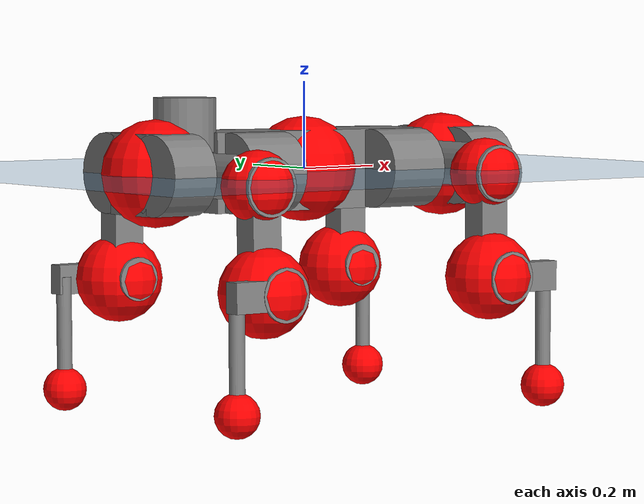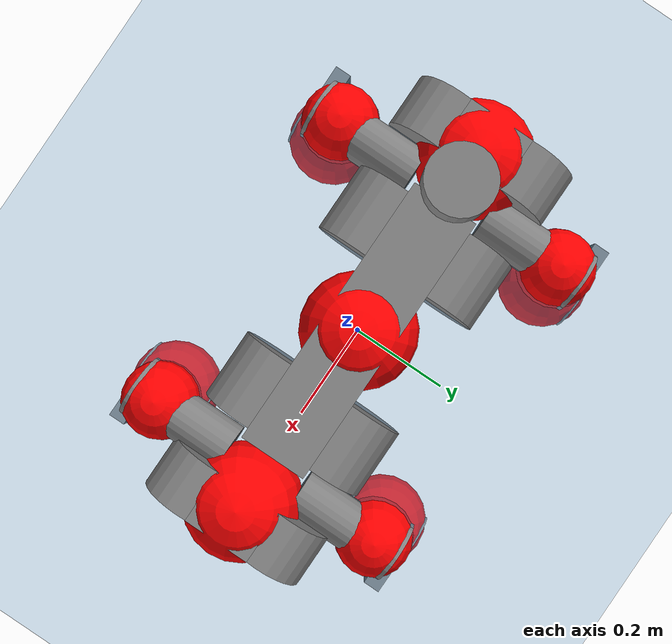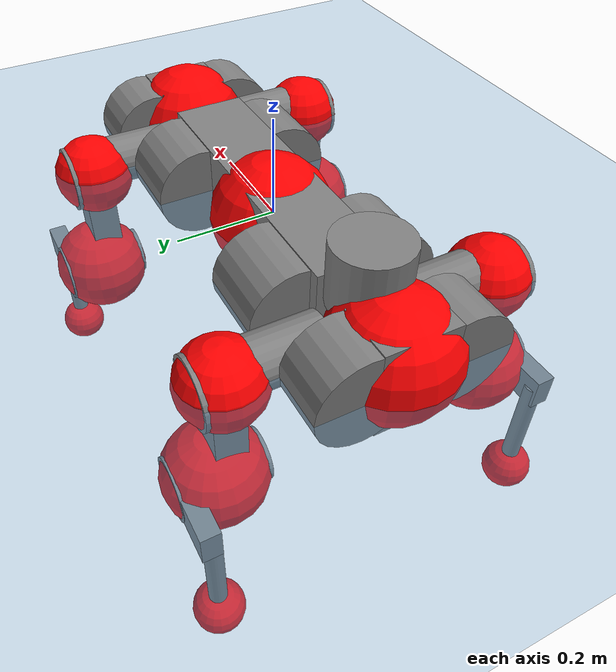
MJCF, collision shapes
<mujoco model="anymal_c">
  <compiler angle="radian" assetdir="assets" balanceinertia="true" inertiafromgeom="false"/>

  <option timestep="0.005" density="1.2" viscosity="2e-05"/>

  <size nkey="1"/>

  <visual>
    <quality shadowsize="8192"/>
    <map shadowclip="0.5"/>
  </visual>

  <default>
    <default class="/">
      <material specular="0" shininess="0.25"/>
      <geom contype="0" conaffinity="0" group="1" solref="-1000 -80"/>
      <site size="0.01 0.005 0.005" group="5"/>
      <general forcelimited="true" forcerange="-80 80" biastype="affine" gainprm="80" biasprm="0 -80 -2"/>
      <default class="anymal_c">
        <joint armature="0.01" damping="0.01" frictionloss="0.1"/>
        <default class="visual">
          <geom type="mesh" group="2"/>
          <default class="visual_zflip"/>
        </default>
        <default class="collision">
          <geom type="cylinder" group="3"/>
          <default class="foot">
            <geom size="0.03 0 0" type="sphere" condim="6" priority="1" friction="0.8 0.02 0.01" solimp="0.015 1 0.03"/>
          </default>
        </default>
      </default>
      <default class="reward_collision_sphere">
        <geom group="5" rgba="1 0 0 1"/>
      </default>
    </default>
  </default>

  <asset>
    <texture type="skybox" colorspace="auto" name="//unnamed_texture_0" builtin="gradient" rgb1="0.95 0.95 0.95" rgb2="0.95 0.95 0.95" width="100" height="600"/>
    <texture type="2d" colorspace="auto" name="texplane" builtin="checker" rgb1="0.345 0.575 0.748" rgb2="0.345 0.575 0.748" markrgb="1 1 1" width="512" height="512"/>
    <texture type="2d" colorspace="linear" name="base" file="base.png"/>
    <texture type="2d" colorspace="linear" name="top_shell" file="top_shell.png"/>
    <texture type="2d" colorspace="linear" name="bottom_shell" file="bottom_shell.png"/>
    <texture type="2d" colorspace="linear" name="remote" file="remote.png"/>
    <texture type="2d" colorspace="linear" name="hatch" file="hatch.png"/>
    <texture type="2d" colorspace="linear" name="handle" file="handle.png"/>
    <texture type="2d" colorspace="linear" name="face" file="face.png"/>
    <texture type="2d" colorspace="linear" name="battery" file="battery.png"/>
    <texture type="2d" colorspace="linear" name="lidar_cage" file="lidar_cage.png"/>
    <texture type="2d" colorspace="linear" name="depth_camera" file="depth_camera.png"/>
    <texture type="2d" colorspace="linear" name="wide_angle_camera" file="wide_angle_camera.png"/>
    <texture type="2d" colorspace="linear" name="lidar" file="lidar.png"/>
    <texture type="2d" colorspace="linear" name="drive" file="drive.png"/>
    <texture type="2d" colorspace="linear" name="hip_l" file="hip_l.png"/>
    <texture type="2d" colorspace="linear" name="shank_l" file="shank_l.png"/>
    <texture type="2d" colorspace="linear" name="foot" file="foot.png"/>
    <texture type="2d" colorspace="linear" name="thigh" file="thigh.png"/>
    <texture type="2d" colorspace="linear" name="shank_r" file="shank_r.png"/>
    <texture type="2d" colorspace="linear" name="hip_r" file="hip_r.png"/>
    <material name="MatPlane" class="/" texture="texplane" texuniform="true" texrepeat="2 2" specular="0.9" shininess="0.5"/>
    <material name="black_plastic" class="/" rgba="0.007 0.007 0.007 1"/>
    <material name="green" class="/" rgba="0.052 0.178 0.033 1"/>
    <material name="red" class="/" rgba="0.178 0.006 0.005 1"/>
    <material name="yellow" class="/" rgba="0.178 0.119 0.006 1"/>
    <material name="lwl" class="/" rgba="0.8 0.8 0.8 1"/>
    <material name="base" class="/" texture="base"/>
    <material name="top_shell" class="/" texture="top_shell"/>
    <material name="bottom_shell" class="/" texture="bottom_shell"/>
    <material name="hip_l" class="/" texture="hip_l"/>
    <material name="thigh" class="/" texture="thigh"/>
    <material name="shank_l" class="/" texture="shank_l"/>
    <material name="foot" class="/" texture="foot"/>
    <material name="hip_r" class="/" texture="hip_r"/>
    <material name="shank" class="/" texture="shank_r"/>
    <material name="hatch" class="/" texture="hatch"/>
    <material name="remote" class="/" texture="remote"/>
    <material name="handle" class="/" texture="handle"/>
    <material name="face" class="/" texture="face"/>
    <material name="depth_camera" class="/" texture="depth_camera"/>
    <material name="wide_angle_camera" class="/" texture="wide_angle_camera"/>
    <material name="battery" class="/" texture="battery"/>
    <material name="lidar_cage" class="/" texture="lidar_cage"/>
    <material name="lidar" class="/" texture="lidar"/>
    <material name="drive" class="/" texture="drive"/>
    <mesh name="base_0" class="/" file="base_0.obj"/>
    <mesh name="base_1" class="/" file="base_1.obj"/>
    <mesh name="base_2" class="/" file="base_2.obj"/>
    <mesh name="base_3" class="/" file="base_3.obj"/>
    <mesh name="base_4" class="/" file="base_4.obj"/>
    <mesh name="base_5" class="/" file="base_5.obj"/>
    <mesh name="top_shell" class="/" file="top_shell.obj"/>
    <mesh name="bottom_shell" class="/" file="bottom_shell.obj"/>
    <mesh name="remote" class="/" file="remote.obj"/>
    <mesh name="handle" class="/" file="handle.obj"/>
    <mesh name="face" class="/" file="face.obj"/>
    <mesh name="wide_angle_camera" class="/" file="wide_angle_camera.obj"/>
    <mesh name="depth_camera" class="/" file="depth_camera.obj"/>
    <mesh name="battery" class="/" file="battery.obj"/>
    <mesh name="lidar_cage" class="/" file="lidar_cage.obj"/>
    <mesh name="lidar" class="/" file="lidar.obj"/>
    <mesh name="drive" class="/" file="drive.obj"/>
    <mesh name="hip_l" class="/" file="hip_l.obj"/>
    <mesh name="thigh" class="/" file="thigh.obj"/>
    <mesh name="shank_l" class="/" file="shank_l.obj"/>
    <mesh name="foot" class="/" file="foot.obj"/>
    <mesh name="hip_r" class="/" file="hip_r.obj"/>
    <mesh name="hatch" class="/" file="hatch.obj"/>
    <mesh name="shank_r" class="/" file="shank_r.obj"/>
  </asset>

  <worldbody>
    <geom name="floor" class="/" size="100 100 0.125" type="plane" group="0" material="MatPlane"/>
    <light name="toplight_shadow" class="/" pos="0 0 5" dir="0.0990148 0.0990148 -0.990148" type="directional" ambient="0.04 0.04 0.04" diffuse="0.55 0.55 0.55" specular="0.12 0.12 0.12"/>
    <light name="toplight_fill" class="/" pos="0 0 5" dir="0.0990148 0.0990148 -0.990148" type="directional" castshadow="false" ambient="0.04 0.04 0.04" diffuse="0.3 0.3 0.3" specular="0.08 0.08 0.08"/>
    <body name="trunk" childclass="anymal_c" pos="-0.000987224 0.00319469 -0.000670001" quat="0.999999 -0.000554192 0.00113362 -0.00102535">
      <inertial pos="0.00416203 0.00792688 0.0350267" quat="0.504449 0.502342 0.501406 0.491707" mass="20.6105" diaginertia="0.496007 2.50758 0.0776621"/>
      <joint name="//unnamed_joint_0" type="free" armature="0" damping="0" frictionloss="0"/>
      <geom name="//unnamed_geom_1" class="visual" material="green" mesh="base_0"/>
      <geom name="//unnamed_geom_2" class="visual" material="yellow" mesh="base_1"/>
      <geom name="//unnamed_geom_3" class="visual" material="red" mesh="base_2"/>
      <geom name="//unnamed_geom_4" class="visual" material="black_plastic" mesh="base_3"/>
      <geom name="//unnamed_geom_5" class="visual" material="lwl" mesh="base_4"/>
      <geom name="//unnamed_geom_6" class="visual" material="base" mesh="base_5"/>
      <geom name="trunk_1" class="collision" size="0.293342 0.0708068 0.0910373" type="box"/>
      <geom name="trunk_2" class="collision" size="0.0910373 0.0733356" pos="0.199129 0.0916636 0" quat="0.707107 0 0.707107 0"/>
      <geom name="trunk_3" class="collision" size="0.0910373 0.0733356" pos="-0.199129 0.0916636 0" quat="0.707107 0 0.707107 0"/>
      <geom name="trunk_4" class="collision" size="0.0910373 0.0733356" pos="0.199129 -0.0916636 0" quat="0.707107 0 0.707107 0"/>
      <geom name="trunk_5" class="collision" size="0.0910373 0.0733356" pos="-0.199129 -0.0916636 0" quat="0.707107 0 0.707107 0"/>
      <geom name="//unnamed_geom_12" class="visual" material="top_shell" mesh="top_shell"/>
      <geom name="//unnamed_geom_13" class="visual" material="bottom_shell" mesh="bottom_shell"/>
      <geom name="//unnamed_geom_14" class="visual" material="remote" mesh="remote"/>
      <geom name="//unnamed_geom_15" class="visual" material="handle" mesh="handle"/>
      <geom name="//unnamed_geom_16" class="visual" pos="0.379489 0 0" quat="1 0 0 0" material="face" mesh="face"/>
      <geom name="trunk_6" class="collision" size="0.0556339 0.0708068 0.0910373" pos="0.429843 0 0" type="box"/>
      <geom name="//unnamed_geom_18" class="collision" size="0.0910373 0.0556339" pos="0.429843 0.0916636 0" quat="0.707107 0 0.707107 0"/>
      <geom name="//unnamed_geom_19" class="collision" size="0.0910373 0.0556339" pos="0.429843 -0.0916636 0" quat="0.707107 0 0.707107 0"/>
      <geom name="//unnamed_geom_20" class="visual" pos="0.422652 0 -0.0228338" quat="0.965926 0 0.258819 0" material="depth_camera" mesh="depth_camera"/>
      <geom name="//unnamed_geom_21" class="visual" pos="0.469669 0 0.0121191" material="wide_angle_camera" mesh="wide_angle_camera"/>
      <geom name="//unnamed_geom_22" class="visual_zflip" pos="-0.379489 0 0" quat="0 0 0 1" material="face" mesh="face"/>
      <geom name="trunk_7" class="collision" size="0.0556339 0.0708068 0.0910373" pos="-0.429843 0 0" quat="0 0 0 1" type="box"/>
      <geom name="//unnamed_geom_24" class="collision" size="0.0910373 0.0556339" pos="-0.429843 -0.0916636 0" quat="0 -0.707107 0 0.707107"/>
      <geom name="//unnamed_geom_25" class="collision" size="0.0910373 0.0556339" pos="-0.429843 0.0916636 0" quat="0 -0.707107 0 0.707107"/>
      <geom name="//unnamed_geom_26" class="visual" pos="-0.422652 0 -0.0228338" quat="0 -0.258819 0 0.965926" material="depth_camera" mesh="depth_camera"/>
      <geom name="//unnamed_geom_27" class="visual_zflip" pos="-0.469669 0 0.0121191" quat="0 0 0 1" material="wide_angle_camera" mesh="wide_angle_camera"/>
      <geom name="//unnamed_geom_28" class="visual" material="battery" mesh="battery"/>
      <geom name="//unnamed_geom_29" class="visual" pos="0 0.105288 0.0243232" quat="0.683013 -0.183013 0.183013 0.683013" material="depth_camera" mesh="depth_camera"/>
      <geom name="//unnamed_geom_30" class="visual" pos="0 -0.105288 0.0243232" quat="0.683013 0.183013 0.183013 -0.683013" material="depth_camera" mesh="depth_camera"/>
      <geom name="//unnamed_geom_31" class="visual" pos="-0.333254 0 0.0595028" quat="1 0 0 0" material="lidar_cage" mesh="lidar_cage"/>
      <geom name="trunk_8" class="collision" size="0.0708068 0.0606915" pos="-0.333254 0 0.108076"/>
      <geom name="//unnamed_geom_33" class="visual" pos="-0.333254 0.000154771 0.11512" quat="0.707107 0 0 -0.707107" material="lidar" mesh="lidar"/>
      <geom name="//unnamed_geom_34" class="visual" pos="0.274569 0.136008 8.62366e-09" quat="0.258819 0.965926 0 0" material="drive" mesh="drive"/>
      <geom name="//unnamed_geom_35" class="visual" pos="0.274569 -0.136008 -8.62366e-09" quat="0.258819 -0.965926 0 0" material="drive" mesh="drive"/>
      <geom name="//unnamed_geom_36" class="visual" pos="-0.274569 0.136008 -8.62366e-09" quat="0 0 0.965926 -0.258819" material="drive" mesh="drive"/>
      <geom name="//unnamed_geom_37" class="visual" pos="-0.274569 -0.136008 8.62366e-09" quat="0 0 -0.965926 -0.258819" material="drive" mesh="drive"/>
      <geom name="//unnamed_geom_38" class="visual" pos="0.106202 0 0.059098" quat="1 0 0 0" material="hatch" mesh="hatch"/>
      <geom name="//unnamed_geom_39" class="reward_collision_sphere" size="0.121383"/>
      <geom name="//unnamed_geom_40" class="reward_collision_sphere" size="0.121383" pos="0.41199 0 0"/>
      <geom name="//unnamed_geom_41" class="reward_collision_sphere" size="0.121383" pos="-0.41199 0 0"/>
      <site name="imu" pos="0.217003 0.020724 0.0472121" size="0.0101153"/>
      <camera name="track" pos="0 -2.61896 0" quat="0.707107 0.707107 0 0" mode="trackcom"/>
      <camera name="ego_camera" pos="0.41199 0 -0.0323825" quat="-0.5 -0.5 0.5 0.5"/>
      <body name="LF_HIP" pos="0.277356 0.135612 -0.000769664" quat="0.258345 0.966052 -0.000817951 -0.000745363">
        <inertial pos="0.0523282 -0.0147484 -0.00629099" quat="-0.172007 0.699753 -0.12736 0.68157" mass="2.98712" diaginertia="0.00374702 0.0195509 0.00114078"/>
        <joint name="LF_HAA" pos="0 0 0" axis="0.999997 0.00032676 0.00248252" range="-0.687256 0.447785" armature="0.00954615" damping="0.0206214" frictionloss="0.0981637"/>
        <geom name="//unnamed_geom_42" class="visual" pos="0 0.000507291 -8.33221e-05" quat="0.258819 -0.965926 0 0" material="hip_l" mesh="hip_l"/>
        <geom name="//unnamed_geom_43" class="visual" pos="0.0548405 -0.0714602 -0.0375599" quat="0.183013 -0.683013 0.683013 0.183013" material="drive" mesh="drive"/>
        <geom name="//unnamed_geom_44" class="collision" size="0.0505763 0.0708068" pos="0.0548405 -0.0156611 -0.00559002" quat="-0.353553 -0.612372 0.612372 -0.353553"/>
        <body name="LF_THIGH" pos="0.0497872 -0.0968514 -0.0324475" quat="0.183472 -0.684831 0.682018 0.179432">
          <inertial pos="0.0276092 -0.0083214 -0.200841" quat="0.993192 -0.00477991 -0.0795876 0.0849301" mass="3.13201" diaginertia="0.0210727 0.104511 0.0014671"/>
          <joint name="LF_HFE" pos="0 0 0" axis="0.999851 -0.016715 -0.00434132" range="-3.07282 3.27896" armature="0.00613546" damping="0.0223145" frictionloss="0.111011"/>
          <geom name="//unnamed_geom_45" class="visual" pos="-0.00783799 -1.23508e-05 0" quat="0.707107 0 0 -0.707107" material="thigh" mesh="thigh"/>
          <geom name="//unnamed_geom_46" class="collision" size="0.0657491 0.040461" pos="0.0366213 0 0" quat="0.5 0.5 -0.5 -0.5"/>
          <geom name="//unnamed_geom_47" class="collision" size="0.0379322 0.0303458 0.142943" pos="0.027466 0 -0.114402" quat="0.707107 0 0 -0.707107" type="box"/>
          <geom name="//unnamed_geom_48" class="visual" pos="0.091828 0 -0.230725" quat="1 0 0 0" material="drive" mesh="drive"/>
          <geom name="//unnamed_geom_49" class="collision" size="0.0505763 0.0708068" pos="0.0277407 0 -0.230725" quat="0.707107 0 0.707107 0"/>
          <geom name="//unnamed_geom_50" class="reward_collision_sphere" size="0.080922" pos="0.0228883 0 0"/>
          <body name="LF_SHANK" pos="0.09312 0.000612331 -0.235988" quat="0.999999 -0.00061424 0.000112807 0.00114279">
            <inertial pos="0.0111947 -0.0774645 -0.0603941" quat="0.992996 -0.115269 -0.00135646 -0.025879" mass="0.632585" diaginertia="0.00670579 0.033616 0.000391751"/>
            <joint name="LF_KFE" pos="0 0 0" axis="0.999945 0.00926868 0.0049402" range="-3.30885 3.04468" armature="0.0111518" damping="0.0349086" frictionloss="0.103578"/>
            <geom name="//unnamed_geom_51" class="visual" pos="-0.0025558 -0.0136276 0" quat="0.707107 0 0 -0.707107" material="shank_l" mesh="shank_l"/>
            <geom name="LF_kfe_act" class="collision" size="0.0606915 0.0202305" pos="0.0183107 0 0" quat="0.5 0.5 -0.5 -0.5"/>
            <geom name="//unnamed_geom_53" class="collision" size="0.0581617 0.034139 0.019219" pos="0.0183107 -0.0752938 0" quat="0.5 0.5 -0.5 -0.5" type="box"/>
            <geom name="//unnamed_geom_54" class="visual" pos="0.0119483 -0.11956 -0.273608" quat="0.382683 0 0 -0.92388" material="foot" mesh="foot"/>
            <geom name="LF_calf" class="collision" size="0.0177017 0.14288" pos="0.0119477 -0.115169 -0.136804" quat="0.707107 0 0 -0.707107"/>
            <geom name="LF_foot" class="foot" size="0.0339178" pos="0.0119477 -0.115169 -0.255392" quat="0.707107 0 0 -0.707107"/>
            <geom name="//unnamed_geom_57" class="reward_collision_sphere" size="0.101153" pos="-0.0457767 0 0"/>
            <geom name="//unnamed_geom_58" class="reward_collision_sphere" size="0.0505763" pos="0.0119477 -0.115169 -0.255392"/>
            <site name="LF_foot" class="foot" pos="0.0119477 -0.115169 -0.255392" quat="0.707107 0 0 -0.707107" size="0.0101153"/>
          </body>
        </body>
      </body>
      <body name="RF_HIP" pos="0.282833 -0.134981 0.0113215" quat="0.258934 -0.965895 0.000754584 5.95577e-05">
        <inertial pos="0.0499533 0.0200474 -0.00597926" quat="0.134921 0.658932 0.148657 0.724918" mass="2.91951" diaginertia="0.00399573 0.0189017 0.00116371"/>
        <joint name="RF_HAA" pos="0 0 0" axis="0.999955 9.4248e-05 -0.00946506" stiffness="0.0426176" range="-0.452651 0.606453" armature="0.0104352" damping="0.0280983" frictionloss="0.105938"/>
        <geom name="//unnamed_geom_59" class="visual" pos="0 -0.000507287 -8.33219e-05" quat="0.258819 0.965926 0 0" material="hip_r" mesh="hip_r"/>
        <geom name="//unnamed_geom_60" class="visual" pos="0.0548405 0.0714602 -0.0375599" quat="0.183013 0.683013 0.683013 -0.183013" material="drive" mesh="drive"/>
        <geom name="//unnamed_geom_61" class="collision" size="0.0505763 0.0708068" pos="0.0548405 0.0156611 -0.00559002" quat="-0.353553 0.612372 0.612372 0.353553"/>
        <body name="RF_THIGH" pos="0.0552711 0.0896042 -0.0276396" quat="0.18242 0.682881 0.683079 -0.183848">
          <inertial pos="0.026885 0.00290867 -0.205775" quat="0.992672 -0.00562665 -0.0812545 0.0892614" mass="3.23718" diaginertia="0.0203919 0.115983 0.00146578"/>
          <joint name="RF_HFE" pos="0 0 0" axis="0.999917 -0.0118238 0.00520475" range="-3.17048 3.14489" armature="0.0130284" damping="0" frictionloss="0.114487"/>
          <geom name="//unnamed_geom_62" class="visual" pos="-0.00783799 -1.23508e-05 0" quat="0.707107 0 0 -0.707107" material="thigh" mesh="thigh"/>
          <geom name="//unnamed_geom_63" class="collision" size="0.0657491 0.040461" pos="0.0366213 0 0" quat="0.5 0.5 0.5 0.5"/>
          <geom name="//unnamed_geom_64" class="collision" size="0.0379322 0.0303458 0.142943" pos="0.027466 0 -0.114402" quat="0.707107 0 0 0.707107" type="box"/>
          <geom name="//unnamed_geom_65" class="visual" pos="0.091828 0 -0.230725" quat="1 0 0 0" material="drive" mesh="drive"/>
          <geom name="//unnamed_geom_66" class="collision" size="0.0505763 0.0708068" pos="0.0277407 0 -0.230725" quat="0.707107 0 0.707107 0"/>
          <geom name="//unnamed_geom_67" class="reward_collision_sphere" size="0.080922" pos="0.0228883 0 0"/>
          <body name="RF_SHANK" pos="0.0893553 -0.00412949 -0.237184" quat="1 -0.000374157 -0.00031467 0.00055629">
            <inertial pos="0.00768784 0.077164 -0.0633589" quat="0.993058 0.115329 -0.00102296 0.0231143" mass="0.54773" diaginertia="0.00587373 0.0304411 0.000359761"/>
            <joint name="RF_KFE" pos="0 0 0" axis="0.999966 -0.00667285 0.00481941" range="-3.12961 3.16008" armature="0.00917488" damping="0.0435991" frictionloss="0.100754"/>
            <geom name="//unnamed_geom_68" class="visual" pos="-0.00255578 0.0136276 0" quat="0.707107 0 0 0.707107" material="shank" mesh="shank_r"/>
            <geom name="RF_kfe_act" class="collision" size="0.0606915 0.0202305" pos="0.0183107 0 0" quat="0.5 0.5 0.5 0.5"/>
            <geom name="//unnamed_geom_70" class="collision" size="0.0581617 0.034139 0.019219" pos="0.0183107 0.0752938 0" quat="0.5 0.5 0.5 0.5" type="box"/>
            <geom name="//unnamed_geom_71" class="visual" pos="0.0119471 0.11956 -0.273608" quat="0.382683 0 0 0.92388" material="foot" mesh="foot"/>
            <geom name="RF_calf" class="collision" size="0.0177017 0.14288" pos="0.0119477 0.115169 -0.136804" quat="0.707107 0 0 0.707107"/>
            <geom name="RF_foot" class="foot" size="0.0396706" pos="0.0119477 0.115169 -0.255392" quat="0.707107 0 0 0.707107"/>
            <geom name="//unnamed_geom_74" class="reward_collision_sphere" size="0.101153" pos="-0.0457767 0 0"/>
            <geom name="//unnamed_geom_75" class="reward_collision_sphere" size="0.0505763" pos="0.0119477 0.115169 -0.255392"/>
            <site name="RF_foot" class="foot" pos="0.0119477 0.115169 -0.255392" quat="0.707107 0 0 0.707107" size="0.0101153"/>
          </body>
        </body>
      </body>
      <body name="LH_HIP" pos="-0.273916 0.135023 -0.00396121" quat="0.000579853 -0.000274456 0.965606 -0.260009">
        <inertial pos="0.0537182 0.0182458 -0.00928085" quat="0.135287 0.676028 0.134197 0.711811" mass="3.19337" diaginertia="0.00369451 0.0192916 0.00111716"/>
        <joint name="LH_HAA" pos="0 0 0" axis="0.999997 0.00228164 0.00111482" range="-0.601205 0.716376" armature="0.0093552" damping="0" frictionloss="0.0786703"/>
        <geom name="//unnamed_geom_76" class="visual" pos="0 -0.000507287 -8.33219e-05" quat="-0.258819 -0.965926 0 0" material="hip_r" mesh="hip_r"/>
        <geom name="//unnamed_geom_77" class="visual" pos="0.0548405 0.0714602 -0.0375599" quat="0.183013 0.683013 0.683013 -0.183013" material="drive" mesh="drive"/>
        <geom name="//unnamed_geom_78" class="collision" size="0.0505763 0.0708068" pos="0.0548405 0.0156611 -0.00559002" quat="-0.353553 0.612372 0.612372 0.353553"/>
        <body name="LH_THIGH" pos="0.0540196 0.0961908 -0.0338392" quat="0.184422 0.680753 0.685125 -0.182122">
          <inertial pos="0.0300076 -0.00904903 -0.198512" quat="0.991065 0.00162967 -0.101332 0.0867136" mass="3.51667" diaginertia="0.0200587 0.11299 0.00135319"/>
          <joint name="LH_HFE" pos="0 0 0" axis="0.999112 0.0411715 0.00897549" range="-3.18649 3.10197" armature="0.00858083" damping="0" frictionloss="0.111174"/>
          <geom name="//unnamed_geom_79" class="visual" pos="-0.00783799 -1.23508e-05 0" quat="0.707107 0 0 -0.707107" material="thigh" mesh="thigh"/>
          <geom name="//unnamed_geom_80" class="collision" size="0.0657491 0.040461" pos="0.0366213 0 0" quat="0.5 0.5 -0.5 -0.5"/>
          <geom name="//unnamed_geom_81" class="collision" size="0.0379322 0.0303458 0.142943" pos="0.027466 0 -0.114402" quat="0.707107 0 0 -0.707107" type="box"/>
          <geom name="//unnamed_geom_82" class="visual" pos="0.091828 0 -0.230725" quat="1 0 0 0" material="drive" mesh="drive"/>
          <geom name="//unnamed_geom_83" class="collision" size="0.0505763 0.0708068" pos="0.0277407 0 -0.230725" quat="0.707107 0 0.707107 0"/>
          <geom name="//unnamed_geom_84" class="reward_collision_sphere" size="0.080922" pos="0.0228883 0 0"/>
          <body name="LH_SHANK" pos="0.0927198 -0.00316003 -0.234329" quat="1 -0.000627239 0.000422926 -0.000424947">
            <inertial pos="0.00540272 0.0749422 -0.067586" quat="0.993354 0.110159 -0.00445602 0.0330618" mass="0.618164" diaginertia="0.00701214 0.0382555 0.000421449"/>
            <joint name="LH_KFE" pos="0 0 0" axis="0.99997 -0.00361229 -0.00684751" range="-3.30022 3.13825" armature="0.00588384" damping="0" frictionloss="0.115744"/>
            <geom name="//unnamed_geom_85" class="visual" pos="-0.00255578 0.0136276 0" quat="-0.707107 0 0 -0.707107" material="shank" mesh="shank_r"/>
            <geom name="LH_kfe_act" class="collision" size="0.0606915 0.0202305" pos="0.0183107 0 0" quat="0.5 0.5 -0.5 -0.5"/>
            <geom name="//unnamed_geom_87" class="collision" size="0.0581617 0.034139 0.019219" pos="0.0183107 0.0752938 0" quat="0.5 0.5 -0.5 -0.5" type="box"/>
            <geom name="//unnamed_geom_88" class="visual" pos="0.0119471 0.11956 -0.273608" quat="-0.382683 0 0 -0.92388" material="foot" mesh="foot"/>
            <geom name="LH_calf" class="collision" size="0.0177017 0.14288" pos="0.0119477 0.115169 -0.136804" quat="0.707107 0 0 -0.707107"/>
            <geom name="LH_foot" class="foot" size="0.0354601" pos="0.0119477 0.115169 -0.255392" quat="0.707107 0 0 -0.707107"/>
            <geom name="//unnamed_geom_91" class="reward_collision_sphere" size="0.101153" pos="-0.0457767 0 0"/>
            <geom name="//unnamed_geom_92" class="reward_collision_sphere" size="0.0505763" pos="0.0119477 0.115169 -0.255392"/>
            <site name="LH_foot" class="foot" pos="0.0119477 0.115169 -0.255392" quat="0.707107 0 0 -0.707107" size="0.0101153"/>
          </body>
        </body>
      </body>
      <body name="RH_HIP" pos="-0.266567 -0.138501 -0.000421466" quat="2.19353e-05 0.00250554 -0.966865 -0.255278">
        <inertial pos="0.0537692 -0.0207747 -0.00919821" quat="-0.12826 0.711712 -0.133158 0.677705" mass="2.95123" diaginertia="0.00382383 0.0194214 0.00103186"/>
        <joint name="RH_HAA" pos="0 0 0" axis="0.999919 0.0105275 -0.00717975" range="-0.757008 0.423476" armature="0.00670635" damping="0.0152931" frictionloss="0.0882519"/>
        <geom name="//unnamed_geom_93" class="visual" pos="0 0.000507291 -8.33221e-05" quat="-0.258819 0.965926 0 0" material="hip_l" mesh="hip_l"/>
        <geom name="//unnamed_geom_94" class="visual" pos="0.0548405 -0.0714602 -0.0375599" quat="-0.183013 0.683013 -0.683013 -0.183013" material="drive" mesh="drive"/>
        <geom name="//unnamed_geom_95" class="collision" size="0.0505763 0.0708068" pos="0.0548405 -0.0156611 -0.00559002" quat="0.353553 0.612372 -0.612372 0.353553"/>
        <body name="RH_THIGH" pos="0.0582429 -0.0998557 -0.0341045" quat="-0.183019 0.682958 -0.683087 -0.182933">
          <inertial pos="0.0288327 0.0042565 -0.200724" quat="0.994142 -0.0053248 -0.0782276 0.0743932" mass="3.26689" diaginertia="0.0192779 0.115941 0.00153791"/>
          <joint name="RH_HFE" pos="0 0 0" axis="0.999997 0.000318122 0.00236339" range="-3.09798 2.96897" armature="0.0141103" damping="0" frictionloss="0.0907341"/>
          <geom name="//unnamed_geom_96" class="visual" pos="-0.00783799 -1.23508e-05 0" quat="0.707107 0 0 -0.707107" material="thigh" mesh="thigh"/>
          <geom name="//unnamed_geom_97" class="collision" size="0.0657491 0.040461" pos="0.0366213 0 0" quat="0.5 0.5 0.5 0.5"/>
          <geom name="//unnamed_geom_98" class="collision" size="0.0379322 0.0303458 0.142943" pos="0.027466 0 -0.114402" quat="0.707107 0 0 0.707107" type="box"/>
          <geom name="//unnamed_geom_99" class="visual" pos="0.091828 0 -0.230725" quat="1 0 0 0" material="drive" mesh="drive"/>
          <geom name="//unnamed_geom_100" class="collision" size="0.0505763 0.0708068" pos="0.0277407 0 -0.230725" quat="0.707107 0 0.707107 0"/>
          <geom name="//unnamed_geom_101" class="reward_collision_sphere" size="0.080922" pos="0.0228883 0 0"/>
          <body name="RH_SHANK" pos="0.0898044 -0.000242608 -0.23177" quat="1 0.000116948 0.000824775 8.16968e-06">
            <inertial pos="0.0071265 -0.0777301 -0.0654863" quat="0.992609 -0.118727 -0.00294611 -0.0249635" mass="0.579859" diaginertia="0.00655626 0.0347344 0.000375555"/>
            <joint name="RH_KFE" pos="0 0 0" axis="0.999767 -0.00571952 0.0208226" stiffness="0.00309568" range="-3.26232 3.11451" armature="0.00940786" damping="0" frictionloss="0.0916999"/>
            <geom name="//unnamed_geom_102" class="visual" pos="-0.0025558 -0.0136276 0" quat="0.707107 0 0 -0.707107" material="shank_l" mesh="shank_l"/>
            <geom name="RH_kfe_act" class="collision" size="0.0606915 0.0202305" pos="0.0183107 0 0" quat="0.5 0.5 0.5 0.5"/>
            <geom name="//unnamed_geom_104" class="collision" size="0.0581617 0.034139 0.019219" pos="0.0183107 -0.0752938 0" quat="0.5 0.5 0.5 0.5" type="box"/>
            <geom name="//unnamed_geom_105" class="visual" pos="0.0119483 -0.11956 -0.273608" quat="0.382683 0 0 -0.92388" material="foot" mesh="foot"/>
            <geom name="RH_calf" class="collision" size="0.0177017 0.14288" pos="0.0119477 -0.115169 -0.136804" quat="0.707107 0 0 0.707107"/>
            <geom name="RH_foot" class="foot" size="0.0203508" pos="0.0119477 -0.115169 -0.255392" quat="0.707107 0 0 0.707107"/>
            <geom name="//unnamed_geom_108" class="reward_collision_sphere" size="0.101153" pos="-0.0457767 0 0"/>
            <geom name="//unnamed_geom_109" class="reward_collision_sphere" size="0.0505763" pos="0.0119477 -0.115169 -0.255392"/>
            <site name="RH_foot" class="foot" pos="0.0119477 -0.115169 -0.255392" quat="0.707107 0 0 0.707107" size="0.0101153"/>
          </body>
        </body>
      </body>
    </body>
  </worldbody>

  <contact>
    <pair class="/" geom1="floor" geom2="LF_foot" name="//unnamed_contact_0"/>
    <pair class="/" geom1="floor" geom2="RF_foot" name="//unnamed_contact_1"/>
    <pair class="/" geom1="floor" geom2="LH_foot" name="//unnamed_contact_2"/>
    <pair class="/" geom1="floor" geom2="RH_foot" name="//unnamed_contact_3"/>
  </contact>

  <actuator>
    <general name="LF_HAA" class="/" joint="LF_HAA" forcerange="-78.1563 78.1563" gainprm="80.0868" biasprm="0 -80.0868 -2.25426"/>
    <general name="LF_HFE" class="/" joint="LF_HFE" forcerange="-80.0234 80.0234" gainprm="80.0868" biasprm="0 -80.0868 -2.25426"/>
    <general name="LF_KFE" class="/" joint="LF_KFE" forcerange="-88.4004 88.4004" gainprm="80.0868" biasprm="0 -80.0868 -2.25426"/>
    <general name="RF_HAA" class="/" joint="RF_HAA" forcerange="-85.2722 85.2722" gainprm="80.0868" biasprm="0 -80.0868 -2.25426"/>
    <general name="RF_HFE" class="/" joint="RF_HFE" forcerange="-83.4022 83.4022" gainprm="80.0868" biasprm="0 -80.0868 -2.25426"/>
    <general name="RF_KFE" class="/" joint="RF_KFE" forcerange="-93.1112 93.1112" gainprm="80.0868" biasprm="0 -80.0868 -2.25426"/>
    <general name="LH_HAA" class="/" joint="LH_HAA" forcerange="-79.7704 79.7704" gainprm="80.0868" biasprm="0 -80.0868 -2.25426"/>
    <general name="LH_HFE" class="/" joint="LH_HFE" forcerange="-81.6947 81.6947" gainprm="80.0868" biasprm="0 -80.0868 -2.25426"/>
    <general name="LH_KFE" class="/" joint="LH_KFE" forcerange="-84.6147 84.6147" gainprm="80.0868" biasprm="0 -80.0868 -2.25426"/>
    <general name="RH_HAA" class="/" joint="RH_HAA" forcerange="-84.5227 84.5227" gainprm="80.0868" biasprm="0 -80.0868 -2.25426"/>
    <general name="RH_HFE" class="/" joint="RH_HFE" forcerange="-81.2515 81.2515" gainprm="80.0868" biasprm="0 -80.0868 -2.25426"/>
    <general name="RH_KFE" class="/" joint="RH_KFE" forcerange="-61.534 61.534" gainprm="80.0868" biasprm="0 -80.0868 -2.25426"/>
  </actuator>

  <sensor>
    <gyro site="imu" name="imu_angular_velocity"/>
    <velocimeter site="imu" name="imu_linear_velocity"/>
    <framelinvel objtype="site" objname="LF_foot" name="LF_foot_global_linear_velocity"/>
    <framelinvel objtype="site" objname="RF_foot" name="RF_foot_global_linear_velocity"/>
    <framelinvel objtype="site" objname="LH_foot" name="LH_foot_global_linear_velocity"/>
    <framelinvel objtype="site" objname="RH_foot" name="RH_foot_global_linear_velocity"/>
  </sensor>

  <keyframe>
    <key name="home" qpos="0 0 0.55 1 0 0 0 0 0.4 -0.8 0 -0.4 0.8 0 -0.4 0.8 0 0.4 -0.8"/>
  </keyframe>
</mujoco>
